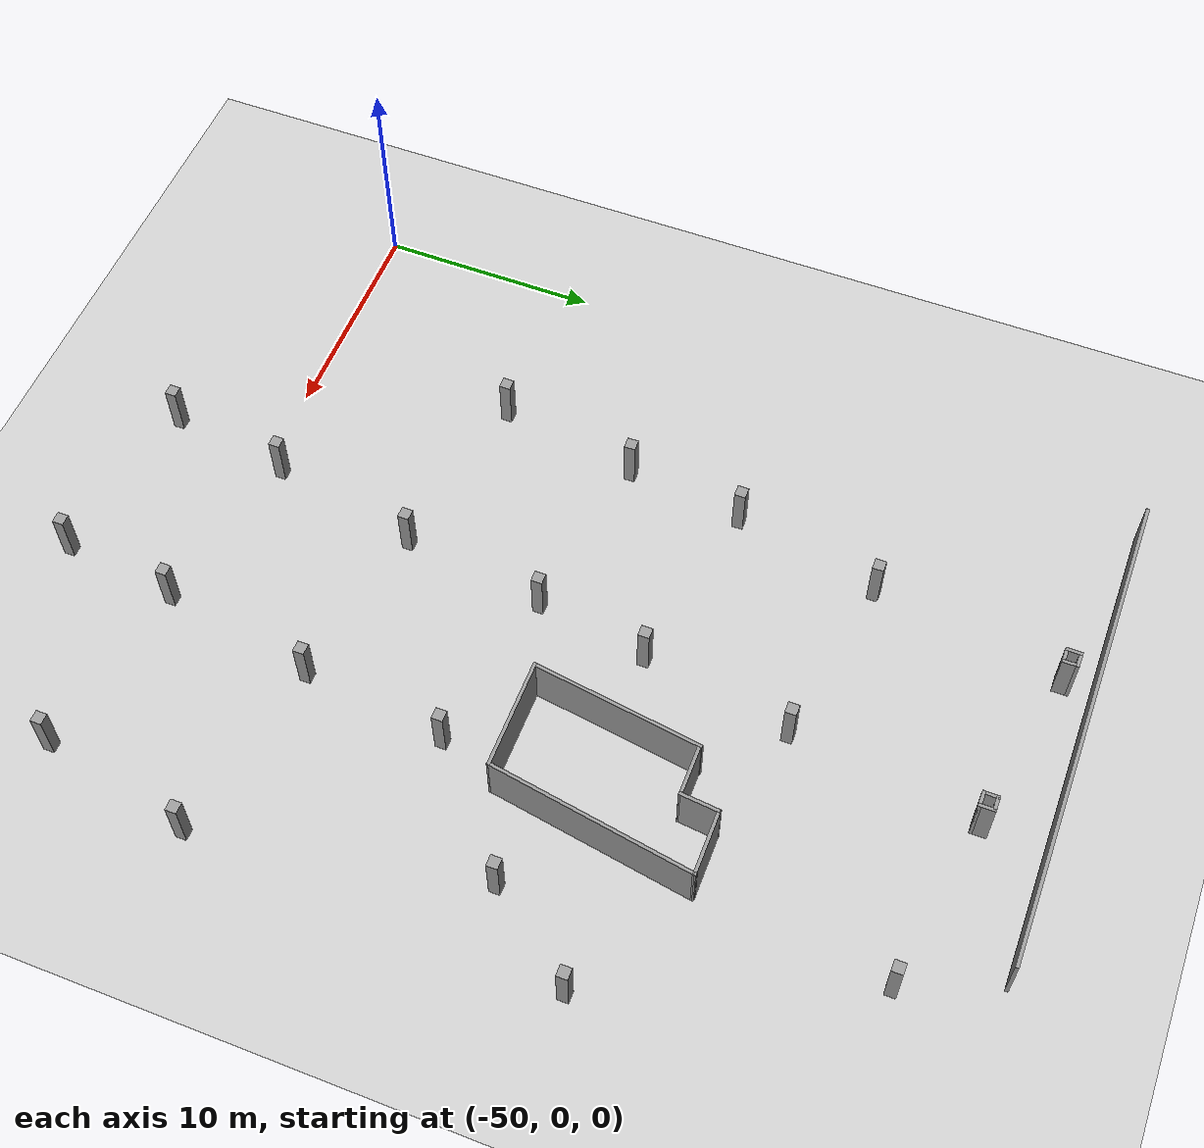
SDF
<sdf version="1.6">
 <world name="default">
  <model name="ground_plane">
   <static>1</static>
   <link name="link">
    <collision name="collision">
     <geometry><plane><normal>0 0 1</normal><size>100 100</size></plane></geometry>
     <surface>
      <contact><collide_bitmask>65535</collide_bitmask></contact>
      <friction><ode><mu>100</mu><mu2>50</mu2></ode></friction>
     </surface>
    </collision>
    <visual name="visual">
     <cast_shadows>0</cast_shadows>
     <geometry><plane><normal>0 0 1</normal><size>100 100</size></plane></geometry>
     <material>
      <script><uri>file://media/materials/scripts/gazebo.material</uri><name>Gazebo/Grey</name></script>
     </material>
    </visual>
   </link>
  </model>
  <model name="parking_area_big_2">
   <pose>0.028574 -0.058085 0 0 -0 0</pose>
   <link name="Wall_113">
    <collision name="Wall_113_Collision">
     <geometry><box><size>3 0.15 2.5</size></box></geometry>
     <pose>0 0 1.25 0 -0 0</pose>
    </collision>
    <visual name="Wall_113_Visual">
     <pose>0 0 1.25 0 -0 0</pose>
     <geometry><box><size>3 0.15 2.5</size></box></geometry>
     <material>
      <script><uri>file://media/materials/scripts/gazebo.material</uri><name>Gazebo/Grey</name></script>
      <ambient>1 1 1 1</ambient>
     </material>
     <meta><layer>0</layer></meta>
    </visual>
    <pose>-24.5837 25.1666 0 0 -0 0</pose>
   </link>
   <link name="Wall_114">
    <collision name="Wall_114_Collision">
     <geometry><box><size>9.54099 0.15 2.5</size></box></geometry>
     <pose>0 0 1.25 0 -0 0</pose>
    </collision>
    <visual name="Wall_114_Visual">
     <pose>0 0 1.25 0 -0 0</pose>
     <geometry><box><size>9.54099 0.15 2.5</size></box></geometry>
     <material>
      <script><uri>file://media/materials/scripts/gazebo.material</uri><name>Gazebo/Grey</name></script>
      <ambient>1 1 1 1</ambient>
     </material>
     <meta><layer>0</layer></meta>
    </visual>
    <pose>-23.901 20.5301 0 0 -0 -1.72956</pose>
   </link>
   <link name="Wall_115">
    <collision name="Wall_115_Collision">
     <geometry><box><size>5 0.15 2.5</size></box></geometry>
     <pose>0 0 1.25 0 -0 0</pose>
    </collision>
    <visual name="Wall_115_Visual">
     <pose>0 0 1.25 0 -0 0</pose>
     <geometry><box><size>5 0.15 2.5</size></box></geometry>
     <material>
      <script><uri>file://media/materials/scripts/gazebo.material</uri><name>Gazebo/Grey</name></script>
      <ambient>1 1 1 1</ambient>
     </material>
     <meta><layer>0</layer></meta>
    </visual>
    <pose>-27.0683 15.8937 0 0 -0 3.14159</pose>
   </link>
   <link name="Wall_116">
    <collision name="Wall_116_Collision">
     <geometry><box><size>7.87007 0.15 2.5</size></box></geometry>
     <pose>0 0 1.25 0 -0 0</pose>
    </collision>
    <visual name="Wall_116_Visual">
     <pose>0 0 1.25 0 -0 0</pose>
     <geometry><box><size>7.87007 0.15 2.5</size></box></geometry>
     <material>
      <script><uri>file://media/materials/scripts/gazebo.material</uri><name>Gazebo/Grey</name></script>
      <ambient>1 1 1 1</ambient>
     </material>
     <meta><layer>0</layer></meta>
    </visual>
    <pose>-28.9609 19.7168 0 0 -0 1.43241</pose>
   </link>
   <link name="Wall_117">
    <collision name="Wall_117_Collision">
     <geometry><box><size>2.41635 0.15 2.5</size></box></geometry>
     <pose>0 0 1.25 0 -0 0</pose>
    </collision>
    <visual name="Wall_117_Visual">
     <pose>0 0 1.25 0 -0 0</pose>
     <geometry><box><size>2.41635 0.15 2.5</size></box></geometry>
     <material>
      <script><uri>file://media/materials/scripts/gazebo.material</uri><name>Gazebo/Grey</name></script>
      <ambient>1 1 1 1</ambient>
     </material>
     <meta><layer>0</layer></meta>
    </visual>
    <pose>-27.2952 23.4937 0 0 -0 0</pose>
   </link>
   <link name="Wall_118">
    <collision name="Wall_118_Collision">
     <geometry><box><size>1.8299 0.15 2.5</size></box></geometry>
     <pose>0 0 1.25 0 -0 0</pose>
    </collision>
    <visual name="Wall_118_Visual">
     <pose>0 0 1.25 0 -0 0</pose>
     <geometry><box><size>1.8299 0.15 2.5</size></box></geometry>
     <material>
      <script><uri>file://media/materials/scripts/gazebo.material</uri><name>Gazebo/Grey</name></script>
      <ambient>1 1 1 1</ambient>
     </material>
     <meta><layer>0</layer></meta>
    </visual>
    <pose>-26.0854 24.3301 0 0 -0 1.47938</pose>
   </link>
   <link name="Wall_120">
    <collision name="Wall_120_Collision">
     <geometry><box><size>0.51 0.5 2.5</size></box></geometry>
     <pose>0 0 1.25 0 -0 0</pose>
    </collision>
    <visual name="Wall_120_Visual">
     <pose>0 0 1.25 0 -0 0</pose>
     <geometry><box><size>0.51 0.5 2.5</size></box></geometry>
     <material>
      <script><uri>file://media/materials/scripts/gazebo.material</uri><name>Gazebo/Grey</name></script>
      <ambient>1 1 1 1</ambient>
     </material>
     <meta><layer>0</layer></meta>
    </visual>
    <pose>-31.3614 26.4373 0 0 -0 0</pose>
   </link>
   <link name="Wall_123">
    <collision name="Wall_123_Collision">
     <geometry><box><size>0.51 0.5 2.5</size></box></geometry>
     <pose>0 0 1.25 0 -0 0</pose>
    </collision>
    <visual name="Wall_123_Visual">
     <pose>0 0 1.25 0 -0 0</pose>
     <geometry><box><size>0.51 0.5 2.5</size></box></geometry>
     <material>
      <script><uri>file://media/materials/scripts/gazebo.material</uri><name>Gazebo/Grey</name></script>
      <ambient>1 1 1 1</ambient>
     </material>
     <meta><layer>0</layer></meta>
    </visual>
    <pose>-17.6542 21.9305 0 0 -0 0</pose>
   </link>
   <link name="Wall_125">
    <collision name="Wall_125_Collision">
     <geometry><box><size>0.51 0.5 2.5</size></box></geometry>
     <pose>0 0 1.25 0 -0 0</pose>
    </collision>
    <visual name="Wall_125_Visual">
     <pose>0 0 1.25 0 -0 0</pose>
     <geometry><box><size>0.51 0.5 2.5</size></box></geometry>
     <material>
      <script><uri>file://media/materials/scripts/gazebo.material</uri><name>Gazebo/Grey</name></script>
      <ambient>1 1 1 1</ambient>
     </material>
     <meta><layer>0</layer></meta>
    </visual>
    <pose>-20.8037 17.7488 0 0 -0 0</pose>
   </link>
   <link name="Wall_128">
    <collision name="Wall_128_Collision">
     <geometry><box><size>0.51 0.5 2.5</size></box></geometry>
     <pose>0 0 1.25 0 -0 0</pose>
    </collision>
    <visual name="Wall_128_Visual">
     <pose>0 0 1.25 0 -0 0</pose>
     <geometry><box><size>0.51 0.5 2.5</size></box></geometry>
     <material>
      <script><uri>file://media/materials/scripts/gazebo.material</uri><name>Gazebo/Grey</name></script>
      <ambient>1 1 1 1</ambient>
     </material>
     <meta><layer>0</layer></meta>
    </visual>
    <pose>-25.9255 13.1648 0 0 -0 0</pose>
   </link>
   <link name="Wall_130">
    <collision name="Wall_130_Collision">
     <geometry><box><size>0.51 0.5 2.5</size></box></geometry>
     <pose>0 0 1.25 0 -0 0</pose>
    </collision>
    <visual name="Wall_130_Visual">
     <pose>0 0 1.25 0 -0 0</pose>
     <geometry><box><size>0.51 0.5 2.5</size></box></geometry>
     <material>
      <script><uri>file://media/materials/scripts/gazebo.material</uri><name>Gazebo/Grey</name></script>
      <ambient>1 1 1 1</ambient>
     </material>
     <meta><layer>0</layer></meta>
    </visual>
    <pose>-32.578 19.608 0 0 -0 -1.5708</pose>
   </link>
   <link name="Wall_132">
    <collision name="Wall_132_Collision">
     <geometry><box><size>0.51 0.5 2.5</size></box></geometry>
     <pose>0 0 1.25 0 -0 0</pose>
    </collision>
    <visual name="Wall_132_Visual">
     <pose>0 0 1.25 0 -0 0</pose>
     <geometry><box><size>0.51 0.5 2.5</size></box></geometry>
     <material>
      <script><uri>file://media/materials/scripts/gazebo.material</uri><name>Gazebo/Grey</name></script>
      <ambient>1 1 1 1</ambient>
     </material>
     <meta><layer>0</layer></meta>
    </visual>
    <pose>-33.4387 14.4529 0 0 -0 0</pose>
   </link>
   <link name="Wall_134">
    <collision name="Wall_134_Collision">
     <geometry><box><size>0.51 0.5 2.5</size></box></geometry>
     <pose>0 0 1.25 0 -0 0</pose>
    </collision>
    <visual name="Wall_134_Visual">
     <pose>0 0 1.25 0 -0 0</pose>
     <geometry><box><size>0.51 0.5 2.5</size></box></geometry>
     <material>
      <script><uri>file://media/materials/scripts/gazebo.material</uri><name>Gazebo/Grey</name></script>
      <ambient>1 1 1 1</ambient>
     </material>
     <meta><layer>0</layer></meta>
    </visual>
    <pose>-39.2624 27.7352 0 0 -0 0</pose>
   </link>
   <link name="Wall_136">
    <collision name="Wall_136_Collision">
     <geometry><box><size>0.51 0.5 2.5</size></box></geometry>
     <pose>0 0 1.25 0 -0 0</pose>
    </collision>
    <visual name="Wall_136_Visual">
     <pose>0 0 1.25 0 -0 0</pose>
     <geometry><box><size>0.51 0.5 2.5</size></box></geometry>
     <material>
      <script><uri>file://media/materials/scripts/gazebo.material</uri><name>Gazebo/Grey</name></script>
      <ambient>1 1 1 1</ambient>
     </material>
     <meta><layer>0</layer></meta>
    </visual>
    <pose>-40.7024 21.0485 0 0 -0 0</pose>
   </link>
   <link name="Wall_138">
    <collision name="Wall_138_Collision">
     <geometry><box><size>0.51 0.5 2.5</size></box></geometry>
     <pose>0 0 1.25 0 -0 0</pose>
    </collision>
    <visual name="Wall_138_Visual">
     <pose>0 0 1.25 0 -0 0</pose>
     <geometry><box><size>0.51 0.5 2.5</size></box></geometry>
     <material>
      <script><uri>file://media/materials/scripts/gazebo.material</uri><name>Gazebo/Grey</name></script>
      <ambient>1 1 1 1</ambient>
     </material>
     <meta><layer>0</layer></meta>
    </visual>
    <pose>-41.363 15.6649 0 0 -0 0</pose>
   </link>
   <link name="Wall_17">
    <collision name="Wall_17_Collision">
     <geometry><box><size>0.75 0.15 2.5</size></box></geometry>
     <pose>0 0 1.25 0 -0 0</pose>
    </collision>
    <visual name="Wall_17_Visual">
     <pose>0 0 1.25 0 -0 0</pose>
     <geometry><box><size>0.75 0.15 2.5</size></box></geometry>
     <material>
      <script><uri>file://media/materials/scripts/gazebo.material</uri><name>Gazebo/Grey</name></script>
      <ambient>1 1 1 1</ambient>
     </material>
     <meta><layer>0</layer></meta>
    </visual>
    <pose>-37.8263 36.768 0 0 -0 3.14159</pose>
   </link>
   <link name="Wall_172">
    <collision name="Wall_172_Collision">
     <geometry><box><size>0.51 0.5 2.5</size></box></geometry>
     <pose>0 0 1.25 0 -0 0</pose>
    </collision>
    <visual name="Wall_172_Visual">
     <pose>0 0 1.25 0 -0 0</pose>
     <geometry><box><size>0.51 0.5 2.5</size></box></geometry>
     <material>
      <script><uri>file://media/materials/scripts/gazebo.material</uri><name>Gazebo/Grey</name></script>
      <ambient>1 1 1 1</ambient>
     </material>
     <meta><layer>0</layer></meta>
    </visual>
    <pose>-42.458 9.22408 0 0 -0 0</pose>
   </link>
   <link name="Wall_174">
    <collision name="Wall_174_Collision">
     <geometry><box><size>0.51 0.5 2.5</size></box></geometry>
     <pose>0 0 1.25 0 -0 0</pose>
    </collision>
    <visual name="Wall_174_Visual">
     <pose>0 0 1.25 0 -0 0</pose>
     <geometry><box><size>0.51 0.5 2.5</size></box></geometry>
     <material>
      <script><uri>file://media/materials/scripts/gazebo.material</uri><name>Gazebo/Grey</name></script>
      <ambient>1 1 1 1</ambient>
     </material>
     <meta><layer>0</layer></meta>
    </visual>
    <pose>-34.3719 7.84932 0 0 -0 0</pose>
   </link>
   <link name="Wall_176">
    <collision name="Wall_176_Collision">
     <geometry><box><size>0.51 0.5 2.5</size></box></geometry>
     <pose>0 0 1.25 0 -0 0</pose>
    </collision>
    <visual name="Wall_176_Visual">
     <pose>0 0 1.25 0 -0 0</pose>
     <geometry><box><size>0.51 0.5 2.5</size></box></geometry>
     <material>
      <script><uri>file://media/materials/scripts/gazebo.material</uri><name>Gazebo/Grey</name></script>
      <ambient>1 1 1 1</ambient>
     </material>
     <meta><layer>0</layer></meta>
    </visual>
    <pose>-26.715 6.56345 0 0 -0 0</pose>
   </link>
   <link name="Wall_178">
    <collision name="Wall_178_Collision">
     <geometry><box><size>0.51 0.5 2.5</size></box></geometry>
     <pose>0 0 1.25 0 -0 0</pose>
    </collision>
    <visual name="Wall_178_Visual">
     <pose>0 0 1.25 0 -0 0</pose>
     <geometry><box><size>0.51 0.5 2.5</size></box></geometry>
     <material>
      <script><uri>file://media/materials/scripts/gazebo.material</uri><name>Gazebo/Grey</name></script>
      <ambient>1 1 1 1</ambient>
     </material>
     <meta><layer>0</layer></meta>
    </visual>
    <pose>-18.4105 5.04505 0 0 -0 3.14159</pose>
   </link>
   <link name="Wall_18">
    <collision name="Wall_18_Collision">
     <geometry><box><size>0.75 0.15 2.5</size></box></geometry>
     <pose>0 0 1.25 0 -0 0</pose>
    </collision>
    <visual name="Wall_18_Visual">
     <pose>0 0 1.25 0 -0 0</pose>
     <geometry><box><size>0.75 0.15 2.5</size></box></geometry>
     <material>
      <script><uri>file://media/materials/scripts/gazebo.material</uri><name>Gazebo/Grey</name></script>
      <ambient>1 1 1 1</ambient>
     </material>
     <meta><layer>0</layer></meta>
    </visual>
    <pose>-38.1263 36.468 0 0 -0 -1.5708</pose>
   </link>
   <link name="Wall_19">
    <collision name="Wall_19_Collision">
     <geometry><box><size>0.75 0.15 2.5</size></box></geometry>
     <pose>0 0 1.25 0 -0 0</pose>
    </collision>
    <visual name="Wall_19_Visual">
     <pose>0 0 1.25 0 -0 0</pose>
     <geometry><box><size>0.75 0.15 2.5</size></box></geometry>
     <material>
      <script><uri>file://media/materials/scripts/gazebo.material</uri><name>Gazebo/Grey</name></script>
      <ambient>1 1 1 1</ambient>
     </material>
     <meta><layer>0</layer></meta>
    </visual>
    <pose>-37.8263 36.168 0 0 -0 0</pose>
   </link>
   <link name="Wall_193">
    <collision name="Wall_193_Collision">
     <geometry><box><size>0.51 0.5 2.5</size></box></geometry>
     <pose>0 0 1.25 0 -0 0</pose>
    </collision>
    <visual name="Wall_193_Visual">
     <pose>0 0 1.25 0 -0 0</pose>
     <geometry><box><size>0.51 0.5 2.5</size></box></geometry>
     <material>
      <script><uri>file://media/materials/scripts/gazebo.material</uri><name>Gazebo/Grey</name></script>
      <ambient>1 1 1 1</ambient>
     </material>
     <meta><layer>0</layer></meta>
    </visual>
    <pose>-19.9409 -1.90272 0 0 -0 0</pose>
   </link>
   <link name="Wall_195">
    <collision name="Wall_195_Collision">
     <geometry><box><size>0.51 0.5 2.5</size></box></geometry>
     <pose>0 0 1.25 0 -0 0</pose>
    </collision>
    <visual name="Wall_195_Visual">
     <pose>0 0 1.25 0 -0 0</pose>
     <geometry><box><size>0.51 0.5 2.5</size></box></geometry>
     <material>
      <script><uri>file://media/materials/scripts/gazebo.material</uri><name>Gazebo/Grey</name></script>
      <ambient>1 1 1 1</ambient>
     </material>
     <meta><layer>0</layer></meta>
    </visual>
    <pose>-28.0618 -0.573806 0 0 -0 0</pose>
   </link>
   <link name="Wall_197">
    <collision name="Wall_197_Collision">
     <geometry><box><size>0.51 0.5 2.5</size></box></geometry>
     <pose>0 0 1.25 0 -0 0</pose>
    </collision>
    <visual name="Wall_197_Visual">
     <pose>0 0 1.25 0 -0 0</pose>
     <geometry><box><size>0.51 0.5 2.5</size></box></geometry>
     <material>
      <script><uri>file://media/materials/scripts/gazebo.material</uri><name>Gazebo/Grey</name></script>
      <ambient>1 1 1 1</ambient>
     </material>
     <meta><layer>0</layer></meta>
    </visual>
    <pose>-35.7914 0.937456 0 0 -0 0</pose>
   </link>
   <link name="Wall_2">
    <collision name="Wall_2_Collision">
     <geometry><box><size>22.25 0.15 2.5</size></box></geometry>
     <pose>0 0 1.25 0 -0 0</pose>
    </collision>
    <visual name="Wall_2_Visual">
     <pose>0 0 1.25 0 -0 0</pose>
     <geometry><box><size>22.25 0.15 2.5</size></box></geometry>
     <material>
      <script><uri>file://media/materials/scripts/gazebo.material</uri><name>Gazebo/Grey</name></script>
      <ambient>1 1 1 1</ambient>
     </material>
     <meta><layer>0</layer></meta>
    </visual>
    <pose>-35.0909 37.7432 0 0 -0 0</pose>
   </link>
   <link name="Wall_20">
    <collision name="Wall_20_Collision">
     <geometry><box><size>0.75 0.15 2.5</size></box></geometry>
     <pose>0 0 1.25 0 -0 0</pose>
    </collision>
    <visual name="Wall_20_Visual">
     <pose>0 0 1.25 0 -0 0</pose>
     <geometry><box><size>0.75 0.15 2.5</size></box></geometry>
     <material>
      <script><uri>file://media/materials/scripts/gazebo.material</uri><name>Gazebo/Grey</name></script>
      <ambient>1 1 1 1</ambient>
     </material>
     <meta><layer>0</layer></meta>
    </visual>
    <pose>-37.5263 36.468 0 0 -0 1.5708</pose>
   </link>
   <link name="Wall_207">
    <collision name="Wall_207_Collision">
     <geometry><box><size>0.51 0.5 2.5</size></box></geometry>
     <pose>0 0 1.25 0 -0 0</pose>
    </collision>
    <visual name="Wall_207_Visual">
     <pose>0 0 1.25 0 -0 0</pose>
     <geometry><box><size>0.51 0.5 2.5</size></box></geometry>
     <material>
      <script><uri>file://media/materials/scripts/gazebo.material</uri><name>Gazebo/Grey</name></script>
      <ambient>1 1 1 1</ambient>
     </material>
     <meta><layer>0</layer></meta>
    </visual>
    <pose>-36.6541 -4.66441 0 0 -0 0</pose>
   </link>
   <link name="Wall_209">
    <collision name="Wall_209_Collision">
     <geometry><box><size>0.51 0.5 2.5</size></box></geometry>
     <pose>0 0 1.25 0 -0 0</pose>
    </collision>
    <visual name="Wall_209_Visual">
     <pose>0 0 1.25 0 -0 0</pose>
     <geometry><box><size>0.51 0.5 2.5</size></box></geometry>
     <material>
      <script><uri>file://media/materials/scripts/gazebo.material</uri><name>Gazebo/Grey</name></script>
      <ambient>1 1 1 1</ambient>
     </material>
     <meta><layer>0</layer></meta>
    </visual>
    <pose>-28.7421 -5.91938 0 0 -0 3.14159</pose>
   </link>
   <link name="Wall_22">
    <collision name="Wall_22_Collision">
     <geometry><box><size>0.75 0.15 2.5</size></box></geometry>
     <pose>0 0 1.25 0 -0 0</pose>
    </collision>
    <visual name="Wall_22_Visual">
     <pose>0 0 1.25 0 -0 0</pose>
     <geometry><box><size>0.75 0.15 2.5</size></box></geometry>
     <material>
      <script><uri>file://media/materials/scripts/gazebo.material</uri><name>Gazebo/Grey</name></script>
      <ambient>1 1 1 1</ambient>
     </material>
     <meta><layer>0</layer></meta>
    </visual>
    <pose>-30.2625 35.2682 0 0 -0 0</pose>
   </link>
   <link name="Wall_23">
    <collision name="Wall_23_Collision">
     <geometry><box><size>0.75 0.15 2.5</size></box></geometry>
     <pose>0 0 1.25 0 -0 0</pose>
    </collision>
    <visual name="Wall_23_Visual">
     <pose>0 0 1.25 0 -0 0</pose>
     <geometry><box><size>0.75 0.15 2.5</size></box></geometry>
     <material>
      <script><uri>file://media/materials/scripts/gazebo.material</uri><name>Gazebo/Grey</name></script>
      <ambient>1 1 1 1</ambient>
     </material>
     <meta><layer>0</layer></meta>
    </visual>
    <pose>-29.9625 34.9682 0 0 -0 -1.5708</pose>
   </link>
   <link name="Wall_24">
    <collision name="Wall_24_Collision">
     <geometry><box><size>0.75 0.15 2.5</size></box></geometry>
     <pose>0 0 1.25 0 -0 0</pose>
    </collision>
    <visual name="Wall_24_Visual">
     <pose>0 0 1.25 0 -0 0</pose>
     <geometry><box><size>0.75 0.15 2.5</size></box></geometry>
     <material>
      <script><uri>file://media/materials/scripts/gazebo.material</uri><name>Gazebo/Grey</name></script>
      <ambient>1 1 1 1</ambient>
     </material>
     <meta><layer>0</layer></meta>
    </visual>
    <pose>-30.2625 34.6682 0 0 -0 3.14159</pose>
   </link>
   <link name="Wall_25">
    <collision name="Wall_25_Collision">
     <geometry><box><size>0.75 0.15 2.5</size></box></geometry>
     <pose>0 0 1.25 0 -0 0</pose>
    </collision>
    <visual name="Wall_25_Visual">
     <pose>0 0 1.25 0 -0 0</pose>
     <geometry><box><size>0.75 0.15 2.5</size></box></geometry>
     <material>
      <script><uri>file://media/materials/scripts/gazebo.material</uri><name>Gazebo/Grey</name></script>
      <ambient>1 1 1 1</ambient>
     </material>
     <meta><layer>0</layer></meta>
    </visual>
    <pose>-30.5625 34.9682 0 0 -0 1.5708</pose>
   </link>
   <link name="Wall_31">
    <collision name="Wall_31_Collision">
     <geometry><box><size>0.51 0.5 2.5</size></box></geometry>
     <pose>0 0 1.25 0 -0 0</pose>
    </collision>
    <visual name="Wall_31_Visual">
     <pose>0 0 1.25 0 -0 0</pose>
     <geometry><box><size>0.51 0.5 2.5</size></box></geometry>
     <material>
      <script><uri>file://media/materials/scripts/gazebo.material</uri><name>Gazebo/Grey</name></script>
      <ambient>1 1 1 1</ambient>
     </material>
     <meta><layer>0</layer></meta>
    </visual>
    <pose>-22.3897 33.5974 0 0 -0 0</pose>
   </link>
   <static>1</static>
  </model>
 </world>
</sdf>
